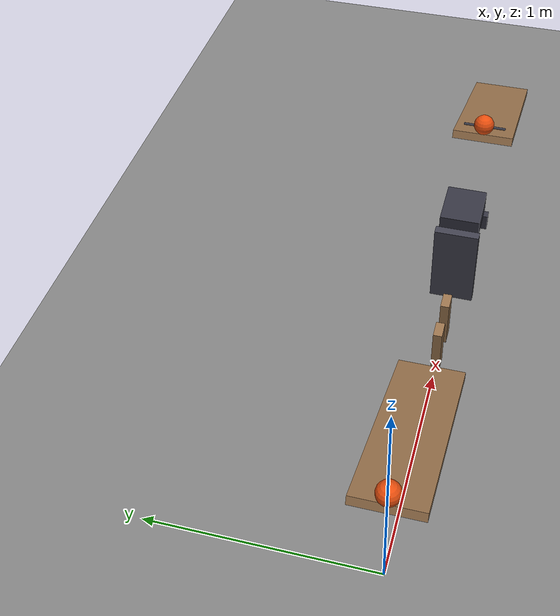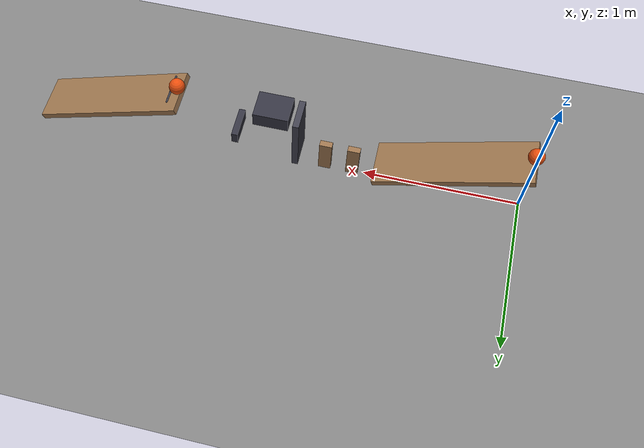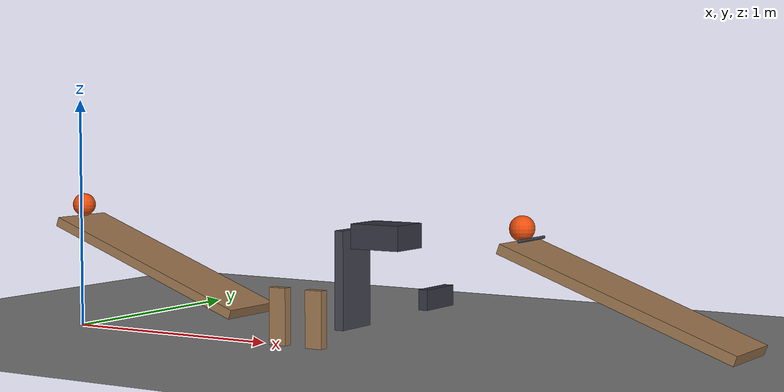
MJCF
<mujoco model="two_ramps_and_a_domino_driven_flap_with_physical_stop">
  <compiler angle="radian"/>
  <option timestep="0.002"/>
  <worldbody>
    <geom name="floor" type="plane" size="20 20 0.1" friction="0.7 0 0"/>
    <body name="ramp1">
      <geom name="ramp1" type="box" pos="0.463006 0 0.302216" size="0.5 0.15 0.02" euler="0 0.349066 0" friction="0.7 0 0" solref="0.01 1" rgba="0.6 0.45 0.3 1"/>
    </body>
    <body name="ball1" pos="0.017101 0 0.539005">
      <freejoint/>
      <geom name="ball1" type="sphere" pos="0 0 0" size="0.05" mass="0.2" condim="6" friction="0.7 0 0" solref="0.01 1" rgba="0.9 0.3 0.05 1"/>
    </body>
    <body name="domino1" pos="1.07969 0 0.12">
      <freejoint/>
      <geom name="domino1" type="box" pos="0 0 0" size="0.04 0.02 0.12" mass="0.25" friction="0.7 0 0" solref="0.01 1" rgba="0.6 0.45 0.3 1"/>
    </body>
    <body name="domino2" pos="1.25969 0 0.12">
      <freejoint/>
      <geom name="domino2" type="box" pos="0 0 0" size="0.04 0.02 0.12" mass="0.25" friction="0.7 0 0" solref="0.01 1" rgba="0.6 0.45 0.3 1"/>
    </body>
    <body name="flap1" pos="1.43969 0 0.1">
      <joint name="flap1_hinge" type="hinge" pos="0 0 0" axis="0 1 0" limited="true" range="0 1.13446" damping="0.04"/>
      <geom name="flap1" type="box" pos="0 0 0.2" size="0.02 0.1 0.2" mass="0.3" friction="0.7 0 0" solref="0.01 1" rgba="0.25 0.25 0.3 1"/>
    </body>
    <body name="flap1 physical stop">
      <geom name="flap1 physical stop" type="box" pos="1.83067 0 0.25" size="0.02 0.1 0.04" friction="0.7 0 0" solref="0.01 1" rgba="0.2 0.2 0.25 1"/>
    </body>
    <body name="cart1" pos="1.59969 0 100.48">
      <joint name="cart_guide" type="hinge" pos="0 0 0" axis="0 1 0" limited="true" range="-0.0174533 0" damping="2000"/>
      <geom name="cart1" type="box" pos="0 0 -100" size="0.11 0.09 0.05" mass="0.5" friction="0.7 0 0" solref="0.01 1" rgba="0.2 0.2 0.25 1"/>
    </body>
    <body name="ramp2">
      <geom name="ramp2" type="box" pos="2.6556 0 0.302216" size="0.5 0.15 0.02" euler="0 0.349066 0" friction="0.7 0 0" solref="0.01 1" rgba="0.6 0.45 0.3 1"/>
    </body>
    <body name="ball2" pos="2.20969 0 0.539005">
      <freejoint/>
      <geom name="ball2" type="sphere" pos="0 0 0" size="0.05" mass="0.2" condim="6" friction="0.7 0 0" solref="0.01 1" rgba="0.9 0.3 0.05 1"/>
    </body>
    <body name="ball2 retaining lip">
      <geom name="ball2 retaining lip" type="capsule" size="0.006" fromto="2.24969 0.1 0.5 2.24969 -0.1 0.5" friction="0.7 0 0" solref="0.01 1" rgba="0.25 0.25 0.3 1"/>
    </body>
  </worldbody>
  <keyframe>
    <key name="start" qpos="0.017101 0 0.539005 1 0 0 0 1.07969 0 0.12 1 0 0 0 1.25969 0 0.12 1 0 0 0 0 0 2.20969 0 0.539005 1 0 0 0" qvel="0 0 0 0 0 0 0 0 0 0 0 0 0 0 0 0 0 0 0 0 0 0 0 0 0 0"/>
  </keyframe>
</mujoco>
